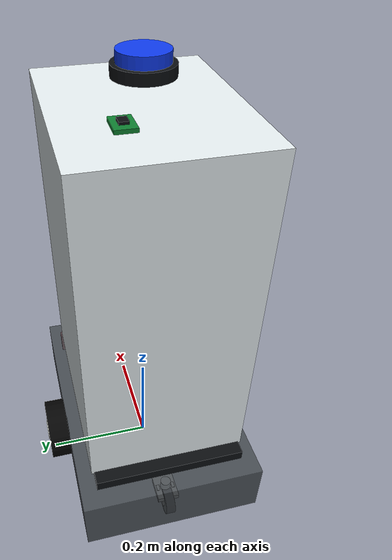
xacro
<?xml version="1.0"?>
<robot name="fishbot_with_sensors" xmlns:xacro="http://www.ros.org/wiki/xacro">
    <xacro:include filename="amr/properties.xacro"/>
    <xacro:include filename="amr/inertial_macros.xacro"/>
    <xacro:include filename="amr/base_chassis.xacro"/>
    <xacro:include filename="amr/cabinet.xacro"/>
    <xacro:include filename="amr/wheels.xacro"/>
    <xacro:include filename="amr/sensors.xacro"/>
    <xacro:include filename="amr/gazebo_properties.xacro"/>
    <xacro:include filename="amr/plugins/gazebo_control_plugin.xacro"/>
    <xacro:include filename="amr/plugins/gazebo_sensor_plugin.xacro"/>
     <xacro:include filename="amr/fishbot.ros2_control.xacro"/>

    <xacro:base_chassis/>
    <xacro:medicine_cabinet/>
    <xacro:drive_wheels/>
    <xacro:caster_wheels/>
    <xacro:sensor_suite/>
    <xacro:gazebo_properties/>
    <xacro:gazebo_sensor_plugin/>
    <xacro:fishbot_ros2_control/>

</robot>

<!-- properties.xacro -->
<robot xmlns:xacro="http://www.ros.org/wiki/xacro">
    <xacro:property name="chassis_length" value="0.50"/>
    <xacro:property name="chassis_width" value="0.34"/>
    <xacro:property name="chassis_height" value="0.11"/>
    <xacro:property name="chassis_z" value="0.075"/>

    <xacro:property name="wheel_radius" value="0.060"/>
    <xacro:property name="wheel_width" value="0.040"/>
    <xacro:property name="wheel_y" value="${chassis_width / 2.0 + wheel_width / 2.0}"/>
    <xacro:property name="caster_radius" value="0.025"/>
    <xacro:property name="caster_wheel_width" value="0.018"/>
    <xacro:property name="caster_trail" value="0.020"/>
    <xacro:property name="caster_swivel_drop" value="0.020"/>
    <xacro:property name="caster_swivel_z" value="${caster_radius + caster_swivel_drop}"/>
    <xacro:property name="caster_front_x" value="0.185"/>
    <xacro:property name="caster_rear_x" value="-0.185"/>

    <xacro:property name="base_top_plate_z" value="${chassis_z + chassis_height / 2.0 + 0.014}"/>
    <xacro:property name="cabinet_length" value="0.38"/>
    <xacro:property name="cabinet_width" value="0.29"/>
    <xacro:property name="cabinet_height" value="0.6"/>
    <xacro:property name="cabinet_z" value="${chassis_z + chassis_height / 2.0 + 0.020 + cabinet_height / 2.0}"/>
    <xacro:property name="cabinet_top_z" value="${cabinet_z + cabinet_height / 2.0}"/>

    <xacro:property name="lidar_z" value="${cabinet_height / 2.0 + 0.055}"/>
    <xacro:property name="camera_x" value="${cabinet_length / 2.0 + 0.025}"/>
    <xacro:property name="camera_z" value="0.190"/>
    <xacro:property name="imu_z" value="${cabinet_height / 2.0 + 0.018}"/>

    <material name="body_gray">
        <color rgba="0.28 0.30 0.32 0.88"/>
    </material>
    <material name="cabinet_white">
        <color rgba="0.88 0.91 0.92 0.94"/>
    </material>
    <material name="door_panel">
        <color rgba="0.72 0.76 0.78 0.90"/>
    </material>
    <material name="panel_black">
        <color rgba="0.02 0.025 0.030 0.98"/>
    </material>
    <material name="top_black">
        <color rgba="0.04 0.05 0.06 0.96"/>
    </material>
    <material name="wheel_black">
        <color rgba="0.01 0.01 0.01 1.0"/>
    </material>
    <material name="hub_silver">
        <color rgba="0.75 0.76 0.72 0.96"/>
    </material>
    <material name="sensor_blue">
        <color rgba="0.05 0.22 0.90 0.92"/>
    </material>
    <material name="lens_black">
        <color rgba="0.00 0.00 0.00 1.0"/>
    </material>
    <material name="imu_green">
        <color rgba="0.05 0.48 0.18 0.90"/>
    </material>
    <material name="bumper_red">
        <color rgba="0.75 0.05 0.04 0.95"/>
    </material>
    <material name="caster_dark">
        <color rgba="0.05 0.05 0.05 0.98"/>
    </material>
</robot>

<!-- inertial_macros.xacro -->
<robot xmlns:xacro="http://www.ros.org/wiki/xacro">
    <xacro:macro name="box_inertial" params="mass x y z ox oy oz">
        <inertial>
            <origin xyz="${ox} ${oy} ${oz}" rpy="0.0 0.0 0.0"/>
            <mass value="${mass}"/>
            <inertia
                ixx="${mass * (y * y + z * z) / 12.0}"
                ixy="0.0"
                ixz="0.0"
                iyy="${mass * (x * x + z * z) / 12.0}"
                iyz="0.0"
                izz="${mass * (x * x + y * y) / 12.0}"/>
        </inertial>
    </xacro:macro>

    <xacro:macro name="cylinder_z_inertial" params="mass radius length ox oy oz">
        <inertial>
            <origin xyz="${ox} ${oy} ${oz}" rpy="0.0 0.0 0.0"/>
            <mass value="${mass}"/>
            <inertia
                ixx="${mass * (3.0 * radius * radius + length * length) / 12.0}"
                ixy="0.0"
                ixz="0.0"
                iyy="${mass * (3.0 * radius * radius + length * length) / 12.0}"
                iyz="0.0"
                izz="${mass * radius * radius / 2.0}"/>
        </inertial>
    </xacro:macro>

    <xacro:macro name="cylinder_y_inertial" params="mass radius length ox oy oz">
        <inertial>
            <origin xyz="${ox} ${oy} ${oz}" rpy="0.0 0.0 0.0"/>
            <mass value="${mass}"/>
            <inertia
                ixx="${mass * (3.0 * radius * radius + length * length) / 12.0}"
                ixy="0.0"
                ixz="0.0"
                iyy="${mass * radius * radius / 2.0}"
                iyz="0.0"
                izz="${mass * (3.0 * radius * radius + length * length) / 12.0}"/>
        </inertial>
    </xacro:macro>

    <xacro:macro name="sphere_inertial" params="mass radius ox oy oz">
        <inertial>
            <origin xyz="${ox} ${oy} ${oz}" rpy="0.0 0.0 0.0"/>
            <mass value="${mass}"/>
            <inertia
                ixx="${0.4 * mass * radius * radius}"
                ixy="0.0"
                ixz="0.0"
                iyy="${0.4 * mass * radius * radius}"
                iyz="0.0"
                izz="${0.4 * mass * radius * radius}"/>
        </inertial>
    </xacro:macro>
</robot>

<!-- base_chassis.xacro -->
<robot xmlns:xacro="http://www.ros.org/wiki/xacro">
    <xacro:macro name="base_chassis">
        <link name="base_footprint"/>

        <joint name="base_footprint_joint" type="fixed">
            <parent link="base_footprint"/>
            <child link="base_link"/>
            <origin xyz="0.0 0.0 0.0" rpy="0.0 0.0 0.0"/>
        </joint>

        <link name="base_link">
            <xacro:box_inertial
                mass="5.00"
                x="${chassis_length}"
                y="${chassis_width}"
                z="${chassis_height}"
                ox="0.0"
                oy="0.0"
                oz="${chassis_z}"/>
            <visual>
                <origin xyz="0.0 0.0 ${chassis_z}" rpy="0.0 0.0 0.0"/>
                <geometry>
                    <box size="${chassis_length} ${chassis_width} ${chassis_height}"/>
                </geometry>
                <material name="body_gray"/>
            </visual>
            <collision>
                <origin xyz="0.0 0.0 ${chassis_z}" rpy="0.0 0.0 0.0"/>
                <geometry>
                    <box size="${chassis_length} ${chassis_width} ${chassis_height}"/>
                </geometry>
            </collision>
            <visual>
                <origin xyz="0.0 0.0 ${base_top_plate_z}" rpy="0.0 0.0 0.0"/>
                <geometry>
                    <box size="0.43 0.28 0.020"/>
                </geometry>
                <material name="top_black"/>
            </visual>
            <collision>
                <origin xyz="0.0 0.0 ${base_top_plate_z}" rpy="0.0 0.0 0.0"/>
                <geometry>
                    <box size="0.43 0.28 0.020"/>
                </geometry>
            </collision>
            <visual>
                <origin xyz="${chassis_length / 2.0 + 0.008} 0.0 ${chassis_z - 0.006}" rpy="0.0 0.0 0.0"/>
                <geometry>
                    <box size="0.018 0.29 0.045"/>
                </geometry>
                <material name="bumper_red"/>
            </visual>
            <collision>
                <origin xyz="${chassis_length / 2.0 + 0.008} 0.0 ${chassis_z - 0.006}" rpy="0.0 0.0 0.0"/>
                <geometry>
                    <box size="0.018 0.29 0.045"/>
                </geometry>
            </collision>
        </link>
    </xacro:macro>
</robot>

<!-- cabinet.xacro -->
<robot xmlns:xacro="http://www.ros.org/wiki/xacro">
    <xacro:macro name="medicine_cabinet">
        <link name="cabinet_link">
            <xacro:box_inertial
                mass="9.00"
                x="${cabinet_length}"
                y="${cabinet_width}"
                z="${cabinet_height}"
                ox="0.0"
                oy="0.0"
                oz="0.0"/>
            <visual>
                <origin xyz="0.0 0.0 0.0" rpy="0.0 0.0 0.0"/>
                <geometry>
                    <box size="${cabinet_length} ${cabinet_width} ${cabinet_height}"/>
                </geometry>
                <material name="cabinet_white"/>
            </visual>
            <collision>
                <origin xyz="0.0 0.0 0.0" rpy="0.0 0.0 0.0"/>
                <geometry>
                    <box size="${cabinet_length} ${cabinet_width} ${cabinet_height}"/>
                </geometry>
            </collision>
            <visual>
                <origin xyz="${cabinet_length / 2.0 + 0.006} 0.0 -0.070" rpy="0.0 0.0 0.0"/>
                <geometry>
                    <box size="0.012 ${cabinet_width - 0.045} 0.440"/>
                </geometry>
                <material name="door_panel"/>
            </visual>
            <visual>
                <origin xyz="${cabinet_length / 2.0 + 0.013} 0.0 -0.070" rpy="0.0 0.0 0.0"/>
                <geometry>
                    <box size="0.010 0.006 0.430"/>
                </geometry>
                <material name="panel_black"/>
            </visual>
            <visual>
                <origin xyz="${cabinet_length / 2.0 + 0.014} 0.0 0.040" rpy="0.0 0.0 0.0"/>
                <geometry>
                    <box size="0.010 ${cabinet_width - 0.070} 0.006"/>
                </geometry>
                <material name="panel_black"/>
            </visual>
            <visual>
                <origin xyz="${cabinet_length / 2.0 + 0.014} 0.0 -0.180" rpy="0.0 0.0 0.0"/>
                <geometry>
                    <box size="0.010 ${cabinet_width - 0.070} 0.006"/>
                </geometry>
                <material name="panel_black"/>
            </visual>
            <visual>
                <origin xyz="${cabinet_length / 2.0 + 0.015} -0.072 -0.030" rpy="0.0 0.0 0.0"/>
                <geometry>
                    <box size="0.014 0.014 0.150"/>
                </geometry>
                <material name="hub_silver"/>
            </visual>
            <visual>
                <origin xyz="${cabinet_length / 2.0 + 0.016} 0.0 0.250" rpy="0.0 0.0 0.0"/>
                <geometry>
                    <box size="0.010 0.150 0.075"/>
                </geometry>
                <material name="panel_black"/>
            </visual>
            <visual>
                <origin xyz="${cabinet_length / 2.0 + 0.018} 0.0 0.255" rpy="0.0 0.0 0.0"/>
                <geometry>
                    <box size="0.006 0.120 0.045"/>
                </geometry>
                <material name="sensor_blue"/>
            </visual>
        </link>

        <joint name="cabinet_joint" type="fixed">
            <parent link="base_link"/>
            <child link="cabinet_link"/>
            <origin xyz="0.0 0.0 ${cabinet_z}" rpy="0.0 0.0 0.0"/>
        </joint>
    </xacro:macro>
</robot>

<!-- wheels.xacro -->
<robot xmlns:xacro="http://www.ros.org/wiki/xacro">
    <xacro:macro name="drive_wheel" params="prefix y">
        <link name="${prefix}_wheel_link">
            <xacro:cylinder_y_inertial
                mass="0.35"
                radius="${wheel_radius}"
                length="${wheel_width}"
                ox="0.0"
                oy="0.0"
                oz="0.0"/>
            <visual>
                <origin xyz="0.0 0.0 0.0" rpy="${pi / 2.0} 0.0 0.0"/>
                <geometry>
                    <cylinder radius="${wheel_radius}" length="${wheel_width}"/>
                </geometry>
                <material name="wheel_black"/>
            </visual>
            <collision>
                <origin xyz="0.0 0.0 0.0" rpy="${pi / 2.0} 0.0 0.0"/>
                <geometry>
                    <cylinder radius="${wheel_radius}" length="${wheel_width}"/>
                </geometry>
            </collision>
            <visual>
                <origin xyz="0.0 0.0 0.0" rpy="${pi / 2.0} 0.0 0.0"/>
                <geometry>
                    <cylinder radius="0.020" length="${wheel_width + 0.004}"/>
                </geometry>
                <material name="hub_silver"/>
            </visual>
        </link>

        <joint name="${prefix}_wheel_joint" type="continuous">
            <parent link="base_link"/>
            <child link="${prefix}_wheel_link"/>
            <origin xyz="0.0 ${y} ${wheel_radius}" rpy="0.0 0.0 0.0"/>
            <axis xyz="0.0 1.0 0.0"/>
            <dynamics damping="0.02" friction="0.01"/>
        </joint>
    </xacro:macro>

    <xacro:macro name="caster_wheel" params="prefix x">
        <link name="${prefix}_caster_swivel_link">
            <xacro:box_inertial
                mass="0.16"
                x="0.050"
                y="${caster_wheel_width + 0.024}"
                z="${caster_swivel_drop + 0.012}"
                ox="0.0"
                oy="0.0"
                oz="${-caster_swivel_drop / 2.0}"/>
            <visual>
                <origin xyz="0.0 0.0 0.006" rpy="0.0 0.0 0.0"/>
                <geometry>
                    <cylinder radius="0.010" length="0.025"/>
                </geometry>
                <material name="hub_silver"/>
            </visual>
            <visual>
                <origin xyz="0.0 0.0 -0.006" rpy="0.0 0.0 0.0"/>
                <geometry>
                    <box size="0.050 ${caster_wheel_width + 0.024} 0.010"/>
                </geometry>
                <material name="hub_silver"/>
            </visual>
            <visual>
                <origin xyz="0.0 ${caster_wheel_width / 2.0 + 0.006} ${-caster_swivel_drop / 2.0}" rpy="0.0 0.0 0.0"/>
                <geometry>
                    <box size="0.012 0.006 ${caster_swivel_drop}"/>
                </geometry>
                <material name="hub_silver"/>
            </visual>
            <visual>
                <origin xyz="0.0 ${-(caster_wheel_width / 2.0 + 0.006)} ${-caster_swivel_drop / 2.0}" rpy="0.0 0.0 0.0"/>
                <geometry>
                    <box size="0.012 0.006 ${caster_swivel_drop}"/>
                </geometry>
                <material name="hub_silver"/>
            </visual>
        </link>

        <joint name="${prefix}_caster_swivel_joint" type="continuous">
            <parent link="base_link"/>
            <child link="${prefix}_caster_swivel_link"/>
            <origin xyz="${x} 0.0 ${caster_swivel_z}" rpy="0.0 0.0 0.0"/>
            <axis xyz="0.0 0.0 1.0"/>
            <dynamics damping="0.001" friction="0.0"/>
        </joint>

        <link name="${prefix}_caster_link">
            <xacro:cylinder_y_inertial
                mass="0.10"
                radius="${caster_radius}"
                length="${caster_wheel_width}"
                ox="0.0"
                oy="0.0"
                oz="0.0"/>
            <visual>
                <origin xyz="0.0 0.0 0.0" rpy="${pi / 2.0} 0.0 0.0"/>
                <geometry>
                    <cylinder radius="${caster_radius}" length="${caster_wheel_width}"/>
                </geometry>
                <material name="caster_dark"/>
            </visual>
            <visual>
                <origin xyz="0.0 0.0 0.0" rpy="${pi / 2.0} 0.0 0.0"/>
                <geometry>
                    <cylinder radius="0.009" length="${caster_wheel_width + 0.006}"/>
                </geometry>
                <material name="hub_silver"/>
            </visual>
            <collision>
                <origin xyz="0.0 0.0 0.0" rpy="${pi / 2.0} 0.0 0.0"/>
                <geometry>
                    <cylinder radius="${caster_radius}" length="${caster_wheel_width}"/>
                </geometry>
            </collision>
        </link>

        <joint name="${prefix}_caster_wheel_joint" type="continuous">
            <parent link="${prefix}_caster_swivel_link"/>
            <child link="${prefix}_caster_link"/>
            <origin xyz="${-caster_trail} 0.0 ${-caster_swivel_drop}" rpy="0.0 0.0 0.0"/>
            <axis xyz="0.0 1.0 0.0"/>
            <dynamics damping="0.001" friction="0.0"/>
        </joint>
    </xacro:macro>

    <xacro:macro name="drive_wheels">
        <xacro:drive_wheel prefix="left" y="${wheel_y}"/>
        <xacro:drive_wheel prefix="right" y="-${wheel_y}"/>
    </xacro:macro>

    <xacro:macro name="caster_wheels">
        <xacro:caster_wheel prefix="front" x="${caster_front_x}"/>
        <xacro:caster_wheel prefix="rear" x="${caster_rear_x}"/>
    </xacro:macro>
</robot>

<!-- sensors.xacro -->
<robot xmlns:xacro="http://www.ros.org/wiki/xacro">
    <xacro:macro name="lidar_sensor">
        <link name="lidar_link">
            <xacro:cylinder_z_inertial
                mass="0.18"
                radius="0.048"
                length="0.040"
                ox="0.0"
                oy="0.0"
                oz="0.0"/>
            <visual>
                <origin xyz="0.0 0.0 -0.008" rpy="0.0 0.0 0.0"/>
                <geometry>
                    <cylinder radius="0.048" length="0.018"/>
                </geometry>
                <material name="top_black"/>
            </visual>
            <collision>
                <origin xyz="0.0 0.0 0.0" rpy="0.0 0.0 0.0"/>
                <geometry>
                    <cylinder radius="0.048" length="0.040"/>
                </geometry>
            </collision>
            <visual>
                <origin xyz="0.0 0.0 0.008" rpy="0.0 0.0 0.0"/>
                <geometry>
                    <cylinder radius="0.040" length="0.022"/>
                </geometry>
                <material name="sensor_blue"/>
            </visual>
        </link>

        <joint name="lidar_joint" type="fixed">
            <parent link="cabinet_link"/>
            <child link="lidar_link"/>
            <origin xyz="0.0 0.0 ${lidar_z}" rpy="0.0 0.0 0.0"/>
        </joint>
    </xacro:macro>

    <xacro:macro name="camera_sensor">
        <link name="camera_link">
            <xacro:box_inertial
                mass="0.15"
                x="0.030"
                y="0.070"
                z="0.045"
                ox="0.0"
                oy="0.0"
                oz="0.0"/>
            <visual>
                <origin xyz="0.0 0.0 0.0" rpy="0.0 0.0 0.0"/>
                <geometry>
                    <box size="0.030 0.070 0.045"/>
                </geometry>
                <material name="top_black"/>
            </visual>
            <collision>
                <origin xyz="0.0 0.0 0.0" rpy="0.0 0.0 0.0"/>
                <geometry>
                    <box size="0.030 0.070 0.045"/>
                </geometry>
            </collision>
            <visual>
                <origin xyz="0.022 0.0 0.0" rpy="0.0 ${pi / 2.0} 0.0"/>
                <geometry>
                    <cylinder radius="0.014" length="0.018"/>
                </geometry>
                <material name="lens_black"/>
            </visual>
            <visual>
                <origin xyz="0.032 0.0 0.0" rpy="0.0 ${pi / 2.0} 0.0"/>
                <geometry>
                    <cylinder radius="0.008" length="0.004"/>
                </geometry>
                <material name="sensor_blue"/>
            </visual>
        </link>

        <joint name="camera_joint" type="fixed">
            <parent link="cabinet_link"/>
            <child link="camera_link"/>
            <origin xyz="${camera_x} 0.0 ${camera_z}" rpy="0.0 0.0 0.0"/>
        </joint>

        <link name="camera_optical_frame"/>

        <joint name="camera_optical_joint" type="fixed">
            <parent link="camera_link"/>
            <child link="camera_optical_frame"/>
            <origin xyz="0.036 0.0 0.0" rpy="${-pi / 2.0} 0.0 ${-pi / 2.0}"/>
        </joint>
    </xacro:macro>

    <xacro:macro name="imu_sensor">
        <link name="imu_link">
            <xacro:box_inertial
                mass="0.05"
                x="0.045"
                y="0.032"
                z="0.010"
                ox="0.0"
                oy="0.0"
                oz="0.0"/>
            <visual>
                <origin xyz="0.0 0.0 0.0" rpy="0.0 0.0 0.0"/>
                <geometry>
                    <box size="0.045 0.032 0.006"/>
                </geometry>
                <material name="imu_green"/>
            </visual>
            <collision>
                <origin xyz="0.0 0.0 0.0" rpy="0.0 0.0 0.0"/>
                <geometry>
                    <box size="0.045 0.032 0.010"/>
                </geometry>
            </collision>
            <visual>
                <origin xyz="0.0 0.0 0.005" rpy="0.0 0.0 0.0"/>
                <geometry>
                    <box size="0.018 0.014 0.004"/>
                </geometry>
                <material name="top_black"/>
            </visual>
        </link>

        <joint name="imu_joint" type="fixed">
            <parent link="cabinet_link"/>
            <child link="imu_link"/>
            <origin xyz="-0.110 0.055 ${imu_z}" rpy="0.0 0.0 0.0"/>
        </joint>
    </xacro:macro>

    <xacro:macro name="sensor_suite">
        <xacro:lidar_sensor/>
        <xacro:camera_sensor/>
        <xacro:imu_sensor/>
    </xacro:macro>
</robot>
